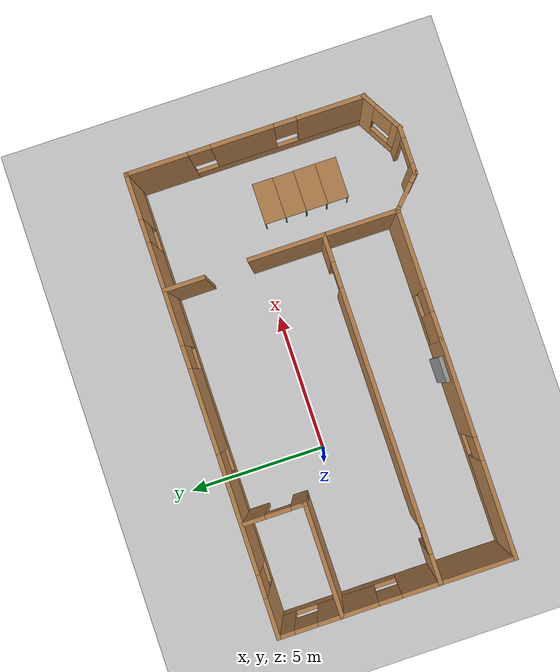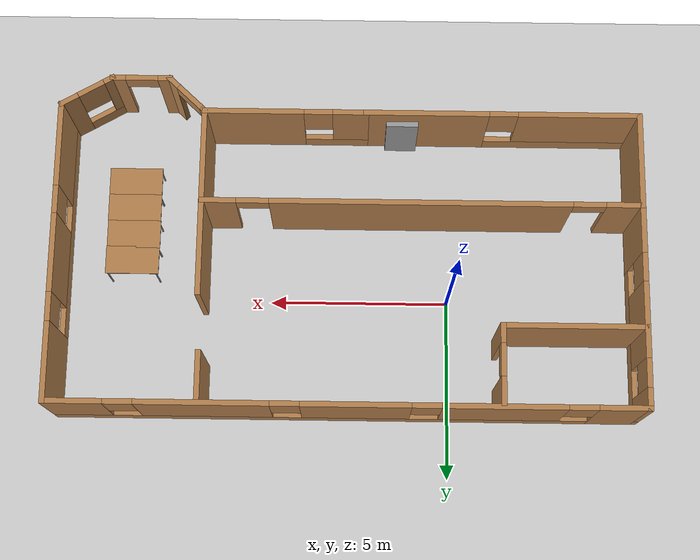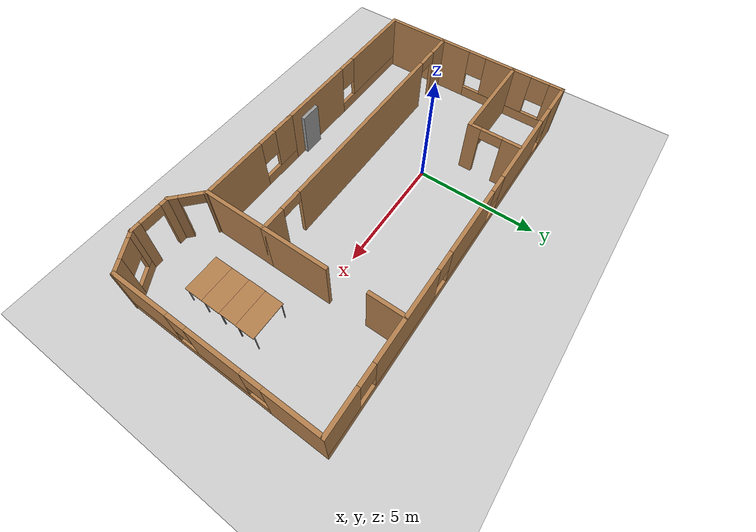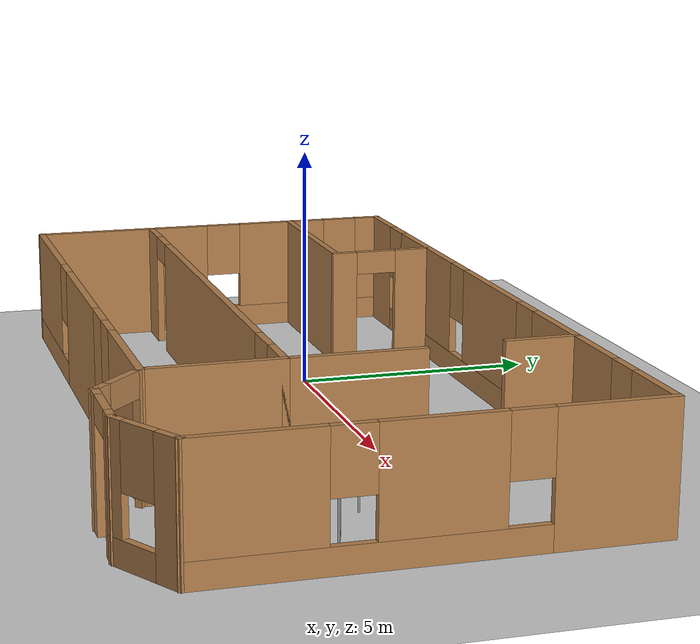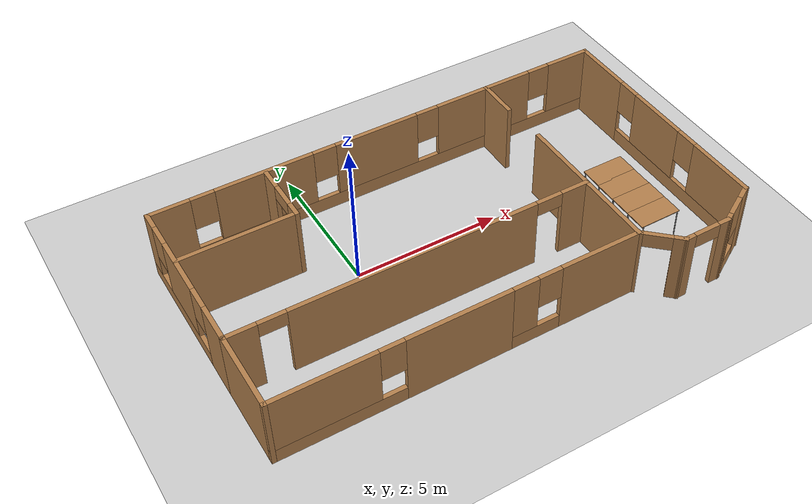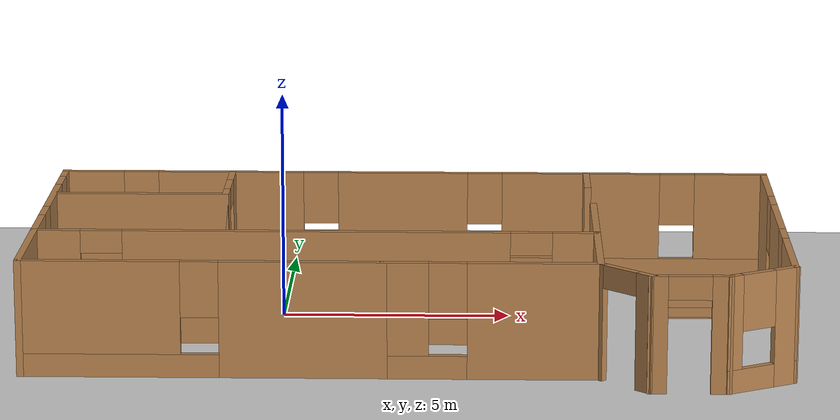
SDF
<sdf version="1.7">
 <world name="default">
  <light name="sun" type="directional">
   <pose>0 0 10 0 -0 0</pose>
   <diffuse>0.8 0.8 0.8 1</diffuse>
   <specular>0.2 0.2 0.2 1</specular>
   <attenuation>
    <range>1000</range>
    <constant>0.9</constant>
    <linear>0.01</linear>
    <quadratic>0.001</quadratic>
   </attenuation>
   <direction>-0.5 0.1 -0.9</direction>
   <spot><inner_angle>0</inner_angle><outer_angle>0</outer_angle><falloff>0</falloff></spot>
  </light>
  <model name="ground_plane">
   <static>1</static>
   <link name="link">
    <collision name="collision">
     <geometry><plane><normal>0 0 1</normal><size>100 100</size></plane></geometry>
     <surface>
      <contact><collide_bitmask>65535</collide_bitmask></contact>
      <friction><ode><mu>100</mu><mu2>50</mu2></ode></friction>
     </surface>
    </collision>
    <visual name="visual">
     <cast_shadows>0</cast_shadows>
     <geometry><plane><normal>0 0 1</normal><size>100 100</size></plane></geometry>
     <material>
      <script><uri>file://media/materials/scripts/gazebo.material</uri><name>Gazebo/Grey</name></script>
     </material>
    </visual>
   </link>
  </model>
  <gravity>0 0 -9.8</gravity>
  <magnetic_field>6e-06 2.3e-05 -4.2e-05</magnetic_field>
  <atmosphere type="adiabatic"/>
  <physics type="ode">
   <max_step_size>0.001</max_step_size>
   <real_time_factor>1</real_time_factor>
   <real_time_update_rate>1000</real_time_update_rate>
  </physics>
  <scene><ambient>0.4 0.4 0.4 1</ambient><background>0.7 0.7 0.7 1</background><shadows>1</shadows></scene>
  <audio><device>default</device></audio>
  <spherical_coordinates>
   <surface_model>EARTH_WGS84</surface_model>
   <latitude_deg>0</latitude_deg>
   <longitude_deg>0</longitude_deg>
   <elevation>0</elevation>
   <heading_deg>0</heading_deg>
  </spherical_coordinates>
  <model name="model_home_1">
   <pose>2.83373 -1.2905 0 0 -0 0</pose>
   <link name="Door_5">
    <collision name="Door_5_Collision">
     <geometry><box><size>0.9 0.17 2</size></box></geometry>
     <pose>0 0 1 0 -0 0</pose>
    </collision>
    <visual name="Door_5_Visual">
     <pose>0 0 1 0 -0 0</pose>
     <geometry><box><size>0.9 0.17 2</size></box></geometry>
     <material>
      <script><uri>file://media/materials/scripts/gazebo.material</uri><name>Gazebo/Grey</name></script>
     </material>
    </visual>
    <pose>-1.48461 -3.47349 0 0 -0 0</pose>
   </link>
   <link name="Wall_10">
    <pose>8.03627 0.415504 0 0 -0 -1.5708</pose>
    <visual name="Wall_10_Visual_0">
     <pose>-3.13323 0 1.25 0 -0 0</pose>
     <geometry><box><size>2.23353 0.15 2.5</size></box></geometry>
     <material>
      <script><uri>file://media/materials/scripts/gazebo.material</uri><name>Gazebo/Wood</name></script>
      <ambient>1 1 1 1</ambient>
     </material>
     <meta><layer>0</layer></meta>
    </visual>
    <collision name="Wall_10_Collision_0">
     <geometry><box><size>2.23353 0.15 2.5</size></box></geometry>
     <pose>-3.13323 0 1.25 0 -0 0</pose>
    </collision>
    <visual name="Wall_10_Visual_1">
     <pose>1.11677 0 0.25 0 -0 0</pose>
     <geometry><box><size>6.26647 0.15 0.5</size></box></geometry>
     <material>
      <script><uri>file://media/materials/scripts/gazebo.material</uri><name>Gazebo/Wood</name></script>
      <ambient>1 1 1 1</ambient>
     </material>
     <meta><layer>0</layer></meta>
    </visual>
    <collision name="Wall_10_Collision_1">
     <geometry><box><size>6.26647 0.15 0.5</size></box></geometry>
     <pose>1.11677 0 0.25 0 -0 0</pose>
    </collision>
    <visual name="Wall_10_Visual_2">
     <pose>-0.109904 0 1.5 0 -0 0</pose>
     <geometry><box><size>2.21312 0.15 2</size></box></geometry>
     <material>
      <script><uri>file://media/materials/scripts/gazebo.material</uri><name>Gazebo/Wood</name></script>
      <ambient>1 1 1 1</ambient>
     </material>
     <meta><layer>0</layer></meta>
    </visual>
    <collision name="Wall_10_Collision_2">
     <geometry><box><size>2.21312 0.15 2</size></box></geometry>
     <pose>-0.109904 0 1.5 0 -0 0</pose>
    </collision>
    <visual name="Wall_10_Visual_3">
     <pose>3.02333 0 1.5 0 -0 0</pose>
     <geometry><box><size>2.45334 0.15 2</size></box></geometry>
     <material>
      <script><uri>file://media/materials/scripts/gazebo.material</uri><name>Gazebo/Wood</name></script>
      <ambient>1 1 1 1</ambient>
     </material>
     <meta><layer>0</layer></meta>
    </visual>
    <collision name="Wall_10_Collision_3">
     <geometry><box><size>2.45334 0.15 2</size></box></geometry>
     <pose>3.02333 0 1.5 0 -0 0</pose>
    </collision>
    <visual name="Wall_10_Visual_4">
     <pose>-1.61647 0 1.9 0 -0 0</pose>
     <geometry><box><size>0.8 0.15 1.2</size></box></geometry>
     <material>
      <script><uri>file://media/materials/scripts/gazebo.material</uri><name>Gazebo/Wood</name></script>
      <ambient>1 1 1 1</ambient>
     </material>
     <meta><layer>0</layer></meta>
    </visual>
    <collision name="Wall_10_Collision_4">
     <geometry><box><size>0.8 0.15 1.2</size></box></geometry>
     <pose>-1.61647 0 1.9 0 -0 0</pose>
    </collision>
    <visual name="Wall_10_Visual_5">
     <pose>1.39666 0 1.9 0 -0 0</pose>
     <geometry><box><size>0.8 0.15 1.2</size></box></geometry>
     <material>
      <script><uri>file://media/materials/scripts/gazebo.material</uri><name>Gazebo/Wood</name></script>
      <ambient>1 1 1 1</ambient>
     </material>
     <meta><layer>0</layer></meta>
    </visual>
    <collision name="Wall_10_Collision_5">
     <geometry><box><size>0.8 0.15 1.2</size></box></geometry>
     <pose>1.39666 0 1.9 0 -0 0</pose>
    </collision>
   </link>
   <link name="Wall_11">
    <pose>7.34345 -4.15949 0 0 -0 -2.61799</pose>
    <visual name="Wall_11_Visual_0">
     <pose>-0.577772 0 1.25 0 -0 0</pose>
     <geometry><box><size>0.594456 0.15 2.5</size></box></geometry>
     <material>
      <script><uri>file://media/materials/scripts/gazebo.material</uri><name>Gazebo/Wood</name></script>
      <ambient>1 1 1 1</ambient>
     </material>
     <meta><layer>0</layer></meta>
    </visual>
    <collision name="Wall_11_Collision_0">
     <geometry><box><size>0.594456 0.15 2.5</size></box></geometry>
     <pose>-0.577772 0 1.25 0 -0 0</pose>
    </collision>
    <visual name="Wall_11_Visual_1">
     <pose>0.297228 0 0.25 0 -0 0</pose>
     <geometry><box><size>1.15554 0.15 0.5</size></box></geometry>
     <material>
      <script><uri>file://media/materials/scripts/gazebo.material</uri><name>Gazebo/Wood</name></script>
      <ambient>1 1 1 1</ambient>
     </material>
     <meta><layer>0</layer></meta>
    </visual>
    <collision name="Wall_11_Collision_1">
     <geometry><box><size>1.15554 0.15 0.5</size></box></geometry>
     <pose>0.297228 0 0.25 0 -0 0</pose>
    </collision>
    <visual name="Wall_11_Visual_2">
     <pose>0.697228 0 1.5 0 -0 0</pose>
     <geometry><box><size>0.355544 0.15 2</size></box></geometry>
     <material>
      <script><uri>file://media/materials/scripts/gazebo.material</uri><name>Gazebo/Wood</name></script>
      <ambient>1 1 1 1</ambient>
     </material>
     <meta><layer>0</layer></meta>
    </visual>
    <collision name="Wall_11_Collision_2">
     <geometry><box><size>0.355544 0.15 2</size></box></geometry>
     <pose>0.697228 0 1.5 0 -0 0</pose>
    </collision>
    <visual name="Wall_11_Visual_3">
     <pose>0.119456 0 1.9 0 -0 0</pose>
     <geometry><box><size>0.8 0.15 1.2</size></box></geometry>
     <material>
      <script><uri>file://media/materials/scripts/gazebo.material</uri><name>Gazebo/Wood</name></script>
      <ambient>1 1 1 1</ambient>
     </material>
     <meta><layer>0</layer></meta>
    </visual>
    <collision name="Wall_11_Collision_3">
     <geometry><box><size>0.8 0.15 1.2</size></box></geometry>
     <pose>0.119456 0 1.9 0 -0 0</pose>
    </collision>
   </link>
   <link name="Wall_12">
    <pose>5.85063 -4.5595 0 0 -0 3.14159</pose>
    <visual name="Wall_12_Visual_0">
     <pose>-0.654676 0 1.25 0 -0 0</pose>
     <geometry><box><size>0.440649 0.15 2.5</size></box></geometry>
     <material>
      <script><uri>file://media/materials/scripts/gazebo.material</uri><name>Gazebo/Wood</name></script>
      <ambient>1 1 1 1</ambient>
     </material>
     <meta><layer>0</layer></meta>
    </visual>
    <collision name="Wall_12_Collision_0">
     <geometry><box><size>0.440649 0.15 2.5</size></box></geometry>
     <pose>-0.654676 0 1.25 0 -0 0</pose>
    </collision>
    <visual name="Wall_12_Visual_1">
     <pose>0.670324 0 1.25 0 -0 0</pose>
     <geometry><box><size>0.409351 0.15 2.5</size></box></geometry>
     <material>
      <script><uri>file://media/materials/scripts/gazebo.material</uri><name>Gazebo/Wood</name></script>
      <ambient>1 1 1 1</ambient>
     </material>
     <meta><layer>0</layer></meta>
    </visual>
    <collision name="Wall_12_Collision_1">
     <geometry><box><size>0.409351 0.15 2.5</size></box></geometry>
     <pose>0.670324 0 1.25 0 -0 0</pose>
    </collision>
    <visual name="Wall_12_Visual_2">
     <pose>0.015649 0 2.25 0 -0 0</pose>
     <geometry><box><size>0.9 0.15 0.5</size></box></geometry>
     <material>
      <script><uri>file://media/materials/scripts/gazebo.material</uri><name>Gazebo/Wood</name></script>
      <ambient>1 1 1 1</ambient>
     </material>
     <meta><layer>0</layer></meta>
    </visual>
    <collision name="Wall_12_Collision_2">
     <geometry><box><size>0.9 0.15 0.5</size></box></geometry>
     <pose>0.015649 0 2.25 0 -0 0</pose>
    </collision>
   </link>
   <link name="Wall_13">
    <pose>4.54345 -4.0845 0 0 -0 2.38895</pose>
    <visual name="Wall_13_Visual_0">
     <pose>-0.552089 0 1.25 0 -0 0</pose>
     <geometry><box><size>0.435578 0.15 2.5</size></box></geometry>
     <material>
      <script><uri>file://media/materials/scripts/gazebo.material</uri><name>Gazebo/Wood</name></script>
      <ambient>1 1 1 1</ambient>
     </material>
     <meta><layer>0</layer></meta>
    </visual>
    <collision name="Wall_13_Collision_0">
     <geometry><box><size>0.435578 0.15 2.5</size></box></geometry>
     <pose>-0.552089 0 1.25 0 -0 0</pose>
    </collision>
    <visual name="Wall_13_Visual_1">
     <pose>0.667789 0 1.25 0 -0 0</pose>
     <geometry><box><size>0.204179 0.15 2.5</size></box></geometry>
     <material>
      <script><uri>file://media/materials/scripts/gazebo.material</uri><name>Gazebo/Wood</name></script>
      <ambient>1 1 1 1</ambient>
     </material>
     <meta><layer>0</layer></meta>
    </visual>
    <collision name="Wall_13_Collision_1">
     <geometry><box><size>0.204179 0.15 2.5</size></box></geometry>
     <pose>0.667789 0 1.25 0 -0 0</pose>
    </collision>
    <visual name="Wall_13_Visual_2">
     <pose>0.1157 0 2.25 0 -0 0</pose>
     <geometry><box><size>0.9 0.15 0.5</size></box></geometry>
     <material>
      <script><uri>file://media/materials/scripts/gazebo.material</uri><name>Gazebo/Wood</name></script>
      <ambient>1 1 1 1</ambient>
     </material>
     <meta><layer>0</layer></meta>
    </visual>
    <collision name="Wall_13_Collision_2">
     <geometry><box><size>0.9 0.15 0.5</size></box></geometry>
     <pose>0.1157 0 2.25 0 -0 0</pose>
    </collision>
   </link>
   <link name="Wall_15">
    <collision name="Wall_15_Collision">
     <geometry><box><size>2.75 0.15 2.5</size></box></geometry>
     <pose>0 0 1.25 0 -0 0</pose>
    </collision>
    <visual name="Wall_15_Visual">
     <pose>0 0 1.25 0 -0 0</pose>
     <geometry><box><size>2.75 0.15 2.5</size></box></geometry>
     <material>
      <script><uri>file://media/materials/scripts/gazebo.material</uri><name>Gazebo/Wood</name></script>
      <ambient>1 1 1 1</ambient>
     </material>
     <meta><layer>0</layer></meta>
    </visual>
    <pose>4.03627 0.290504 0 0 -0 1.5708</pose>
   </link>
   <link name="Wall_17">
    <collision name="Wall_17_Collision">
     <geometry><box><size>1.5 0.15 2.5</size></box></geometry>
     <pose>0 0 1.25 0 -0 0</pose>
    </collision>
    <visual name="Wall_17_Visual">
     <pose>0 0 1.25 0 -0 0</pose>
     <geometry><box><size>1.5 0.15 2.5</size></box></geometry>
     <material>
      <script><uri>file://media/materials/scripts/gazebo.material</uri><name>Gazebo/Wood</name></script>
      <ambient>1 1 1 1</ambient>
     </material>
     <meta><layer>0</layer></meta>
    </visual>
    <pose>3.95539 3.91501 0 0 -0 -1.5708</pose>
   </link>
   <link name="Wall_19">
    <collision name="Wall_19_Collision">
     <geometry><box><size>4 0.15 2.5</size></box></geometry>
     <pose>0 0 1.25 0 -0 0</pose>
    </collision>
    <visual name="Wall_19_Visual">
     <pose>0 0 1.25 0 -0 0</pose>
     <geometry><box><size>4 0.15 2.5</size></box></geometry>
     <material>
      <script><uri>file://media/materials/scripts/gazebo.material</uri><name>Gazebo/Wood</name></script>
      <ambient>1 1 1 1</ambient>
     </material>
     <meta><layer>0</layer></meta>
    </visual>
    <pose>-6.1244 2.3926 0 0 -0 0</pose>
   </link>
   <link name="Wall_2">
    <pose>-4.26373 -3.6095 0 0 -0 3.14159</pose>
    <visual name="Wall_2_Visual_0">
     <pose>-2.12348 0 1.25 0 -0 0</pose>
     <geometry><box><size>3.50304 0.15 2.5</size></box></geometry>
     <material>
      <script><uri>file://media/materials/scripts/gazebo.material</uri><name>Gazebo/Wood</name></script>
      <ambient>1 1 1 1</ambient>
     </material>
     <meta><layer>0</layer></meta>
    </visual>
    <collision name="Wall_2_Collision_0">
     <geometry><box><size>3.50304 0.15 2.5</size></box></geometry>
     <pose>-2.12348 0 1.25 0 -0 0</pose>
    </collision>
    <visual name="Wall_2_Visual_1">
     <pose>1.75152 0 0.25 0 -0 0</pose>
     <geometry><box><size>4.24696 0.15 0.5</size></box></geometry>
     <material>
      <script><uri>file://media/materials/scripts/gazebo.material</uri><name>Gazebo/Wood</name></script>
      <ambient>1 1 1 1</ambient>
     </material>
     <meta><layer>0</layer></meta>
    </visual>
    <collision name="Wall_2_Collision_1">
     <geometry><box><size>4.24696 0.15 0.5</size></box></geometry>
     <pose>1.75152 0 0.25 0 -0 0</pose>
    </collision>
    <visual name="Wall_2_Visual_2">
     <pose>2.15152 0 1.5 0 -0 0</pose>
     <geometry><box><size>3.44696 0.15 2</size></box></geometry>
     <material>
      <script><uri>file://media/materials/scripts/gazebo.material</uri><name>Gazebo/Wood</name></script>
      <ambient>1 1 1 1</ambient>
     </material>
     <meta><layer>0</layer></meta>
    </visual>
    <collision name="Wall_2_Collision_2">
     <geometry><box><size>3.44696 0.15 2</size></box></geometry>
     <pose>2.15152 0 1.5 0 -0 0</pose>
    </collision>
    <visual name="Wall_2_Visual_3">
     <pose>0.028036 0 1.9 0 -0 0</pose>
     <geometry><box><size>0.8 0.15 1.2</size></box></geometry>
     <material>
      <script><uri>file://media/materials/scripts/gazebo.material</uri><name>Gazebo/Wood</name></script>
      <ambient>1 1 1 1</ambient>
     </material>
     <meta><layer>0</layer></meta>
    </visual>
    <collision name="Wall_2_Collision_3">
     <geometry><box><size>0.8 0.15 1.2</size></box></geometry>
     <pose>0.028036 0 1.9 0 -0 0</pose>
    </collision>
   </link>
   <link name="Wall_20">
    <pose>-4.1994 3.4426 0 0 -0 1.5708</pose>
    <visual name="Wall_20_Visual_0">
     <pose>-0.847647 0 1.25 0 -0 0</pose>
     <geometry><box><size>0.554706 0.15 2.5</size></box></geometry>
     <material>
      <script><uri>file://media/materials/scripts/gazebo.material</uri><name>Gazebo/Wood</name></script>
      <ambient>1 1 1 1</ambient>
     </material>
     <meta><layer>0</layer></meta>
    </visual>
    <collision name="Wall_20_Collision_0">
     <geometry><box><size>0.554706 0.15 2.5</size></box></geometry>
     <pose>-0.847647 0 1.25 0 -0 0</pose>
    </collision>
    <visual name="Wall_20_Visual_1">
     <pose>0.727353 0 1.25 0 -0 0</pose>
     <geometry><box><size>0.795294 0.15 2.5</size></box></geometry>
     <material>
      <script><uri>file://media/materials/scripts/gazebo.material</uri><name>Gazebo/Wood</name></script>
      <ambient>1 1 1 1</ambient>
     </material>
     <meta><layer>0</layer></meta>
    </visual>
    <collision name="Wall_20_Collision_1">
     <geometry><box><size>0.795294 0.15 2.5</size></box></geometry>
     <pose>0.727353 0 1.25 0 -0 0</pose>
    </collision>
    <visual name="Wall_20_Visual_2">
     <pose>-0.120294 0 2.25 0 -0 0</pose>
     <geometry><box><size>0.9 0.15 0.5</size></box></geometry>
     <material>
      <script><uri>file://media/materials/scripts/gazebo.material</uri><name>Gazebo/Wood</name></script>
      <ambient>1 1 1 1</ambient>
     </material>
     <meta><layer>0</layer></meta>
    </visual>
    <collision name="Wall_20_Collision_2">
     <geometry><box><size>0.9 0.15 0.5</size></box></geometry>
     <pose>-0.120294 0 2.25 0 -0 0</pose>
    </collision>
   </link>
   <link name="Wall_3">
    <collision name="Wall_3_Collision">
     <geometry><box><size>2.75 0.15 2.5</size></box></geometry>
     <pose>0 0 1.25 0 -0 0</pose>
    </collision>
    <visual name="Wall_3_Visual">
     <pose>0 0 1.25 0 -0 0</pose>
     <geometry><box><size>2.75 0.15 2.5</size></box></geometry>
     <material>
      <script><uri>file://media/materials/scripts/gazebo.material</uri><name>Gazebo/Wood</name></script>
      <ambient>1 1 1 1</ambient>
     </material>
     <meta><layer>0</layer></meta>
    </visual>
    <pose>-8.06373 -2.3095 0 0 -0 1.5708</pose>
   </link>
   <link name="Wall_4">
    <pose>-2.01373 -1.0095 0 0 -0 0</pose>
    <visual name="Wall_4_Visual_0">
     <pose>-5.58734 0 1.25 0 -0 0</pose>
     <geometry><box><size>1.07532 0.15 2.5</size></box></geometry>
     <material>
      <script><uri>file://media/materials/scripts/gazebo.material</uri><name>Gazebo/Wood</name></script>
      <ambient>1 1 1 1</ambient>
     </material>
     <meta><layer>0</layer></meta>
    </visual>
    <collision name="Wall_4_Collision_0">
     <geometry><box><size>1.07532 0.15 2.5</size></box></geometry>
     <pose>-5.58734 0 1.25 0 -0 0</pose>
    </collision>
    <visual name="Wall_4_Visual_1">
     <pose>0.023779 0 1.25 0 -0 0</pose>
     <geometry><box><size>8.34692 0.15 2.5</size></box></geometry>
     <material>
      <script><uri>file://media/materials/scripts/gazebo.material</uri><name>Gazebo/Wood</name></script>
      <ambient>1 1 1 1</ambient>
     </material>
     <meta><layer>0</layer></meta>
    </visual>
    <collision name="Wall_4_Collision_1">
     <geometry><box><size>8.34692 0.15 2.5</size></box></geometry>
     <pose>0.023779 0 1.25 0 -0 0</pose>
    </collision>
    <visual name="Wall_4_Visual_2">
     <pose>5.61112 0 1.25 0 -0 0</pose>
     <geometry><box><size>1.02776 0.15 2.5</size></box></geometry>
     <material>
      <script><uri>file://media/materials/scripts/gazebo.material</uri><name>Gazebo/Wood</name></script>
      <ambient>1 1 1 1</ambient>
     </material>
     <meta><layer>0</layer></meta>
    </visual>
    <collision name="Wall_4_Collision_2">
     <geometry><box><size>1.02776 0.15 2.5</size></box></geometry>
     <pose>5.61112 0 1.25 0 -0 0</pose>
    </collision>
    <visual name="Wall_4_Visual_3">
     <pose>-4.59968 0 2.25 0 -0 0</pose>
     <geometry><box><size>0.9 0.15 0.5</size></box></geometry>
     <material>
      <script><uri>file://media/materials/scripts/gazebo.material</uri><name>Gazebo/Wood</name></script>
      <ambient>1 1 1 1</ambient>
     </material>
     <meta><layer>0</layer></meta>
    </visual>
    <collision name="Wall_4_Collision_3">
     <geometry><box><size>0.9 0.15 0.5</size></box></geometry>
     <pose>-4.59968 0 2.25 0 -0 0</pose>
    </collision>
    <visual name="Wall_4_Visual_4">
     <pose>4.64724 0 2.25 0 -0 0</pose>
     <geometry><box><size>0.9 0.15 0.5</size></box></geometry>
     <material>
      <script><uri>file://media/materials/scripts/gazebo.material</uri><name>Gazebo/Wood</name></script>
      <ambient>1 1 1 1</ambient>
     </material>
     <meta><layer>0</layer></meta>
    </visual>
    <collision name="Wall_4_Collision_4">
     <geometry><box><size>0.9 0.15 0.5</size></box></geometry>
     <pose>4.64724 0 2.25 0 -0 0</pose>
    </collision>
   </link>
   <link name="Wall_5">
    <collision name="Wall_5_Collision">
     <geometry><box><size>2.75 0.15 2.5</size></box></geometry>
     <pose>0 0 1.25 0 -0 0</pose>
    </collision>
    <visual name="Wall_5_Visual">
     <pose>0 0 1.25 0 -0 0</pose>
     <geometry><box><size>2.75 0.15 2.5</size></box></geometry>
     <material>
      <script><uri>file://media/materials/scripts/gazebo.material</uri><name>Gazebo/Wood</name></script>
      <ambient>1 1 1 1</ambient>
     </material>
     <meta><layer>0</layer></meta>
    </visual>
    <pose>4.03627 -2.3095 0 0 -0 -1.5708</pose>
   </link>
   <link name="Wall_6">
    <pose>1.78627 -3.6095 0 0 -0 3.14159</pose>
    <visual name="Wall_6_Visual_0">
     <pose>-0.907639 0 1.25 0 -0 0</pose>
     <geometry><box><size>2.83472 0.15 2.5</size></box></geometry>
     <material>
      <script><uri>file://media/materials/scripts/gazebo.material</uri><name>Gazebo/Wood</name></script>
      <ambient>1 1 1 1</ambient>
     </material>
     <meta><layer>0</layer></meta>
    </visual>
    <collision name="Wall_6_Collision_0">
     <geometry><box><size>2.83472 0.15 2.5</size></box></geometry>
     <pose>-0.907639 0 1.25 0 -0 0</pose>
    </collision>
    <visual name="Wall_6_Visual_1">
     <pose>1.41736 0 0.25 0 -0 0</pose>
     <geometry><box><size>1.81528 0.15 0.5</size></box></geometry>
     <material>
      <script><uri>file://media/materials/scripts/gazebo.material</uri><name>Gazebo/Wood</name></script>
      <ambient>1 1 1 1</ambient>
     </material>
     <meta><layer>0</layer></meta>
    </visual>
    <collision name="Wall_6_Collision_1">
     <geometry><box><size>1.81528 0.15 0.5</size></box></geometry>
     <pose>1.41736 0 0.25 0 -0 0</pose>
    </collision>
    <visual name="Wall_6_Visual_2">
     <pose>1.81736 0 1.5 0 -0 0</pose>
     <geometry><box><size>1.01528 0.15 2</size></box></geometry>
     <material>
      <script><uri>file://media/materials/scripts/gazebo.material</uri><name>Gazebo/Wood</name></script>
      <ambient>1 1 1 1</ambient>
     </material>
     <meta><layer>0</layer></meta>
    </visual>
    <collision name="Wall_6_Collision_2">
     <geometry><box><size>1.01528 0.15 2</size></box></geometry>
     <pose>1.81736 0 1.5 0 -0 0</pose>
    </collision>
    <visual name="Wall_6_Visual_3">
     <pose>0.909722 0 1.9 0 -0 0</pose>
     <geometry><box><size>0.8 0.15 1.2</size></box></geometry>
     <material>
      <script><uri>file://media/materials/scripts/gazebo.material</uri><name>Gazebo/Wood</name></script>
      <ambient>1 1 1 1</ambient>
     </material>
     <meta><layer>0</layer></meta>
    </visual>
    <collision name="Wall_6_Collision_3">
     <geometry><box><size>0.8 0.15 1.2</size></box></geometry>
     <pose>0.909722 0 1.9 0 -0 0</pose>
    </collision>
   </link>
   <link name="Wall_8">
    <pose>-8.06373 1.7905 0 0 -0 1.5708</pose>
    <visual name="Wall_8_Visual_0">
     <pose>-2.17195 0 1.25 0 -0 0</pose>
     <geometry><box><size>1.4061 0.15 2.5</size></box></geometry>
     <material>
      <script><uri>file://media/materials/scripts/gazebo.material</uri><name>Gazebo/Wood</name></script>
      <ambient>1 1 1 1</ambient>
     </material>
     <meta><layer>0</layer></meta>
    </visual>
    <collision name="Wall_8_Collision_0">
     <geometry><box><size>1.4061 0.15 2.5</size></box></geometry>
     <pose>-2.17195 0 1.25 0 -0 0</pose>
    </collision>
    <visual name="Wall_8_Visual_1">
     <pose>0.703052 0 0.25 0 -0 0</pose>
     <geometry><box><size>4.3439 0.15 0.5</size></box></geometry>
     <material>
      <script><uri>file://media/materials/scripts/gazebo.material</uri><name>Gazebo/Wood</name></script>
      <ambient>1 1 1 1</ambient>
     </material>
     <meta><layer>0</layer></meta>
    </visual>
    <collision name="Wall_8_Collision_1">
     <geometry><box><size>4.3439 0.15 0.5</size></box></geometry>
     <pose>0.703052 0 0.25 0 -0 0</pose>
    </collision>
    <visual name="Wall_8_Visual_2">
     <pose>0.383539 0 1.5 0 -0 0</pose>
     <geometry><box><size>2.10487 0.15 2</size></box></geometry>
     <material>
      <script><uri>file://media/materials/scripts/gazebo.material</uri><name>Gazebo/Wood</name></script>
      <ambient>1 1 1 1</ambient>
     </material>
     <meta><layer>0</layer></meta>
    </visual>
    <collision name="Wall_8_Collision_2">
     <geometry><box><size>2.10487 0.15 2</size></box></geometry>
     <pose>0.383539 0 1.5 0 -0 0</pose>
    </collision>
    <visual name="Wall_8_Visual_3">
     <pose>2.55549 0 1.5 0 -0 0</pose>
     <geometry><box><size>0.639025 0.15 2</size></box></geometry>
     <material>
      <script><uri>file://media/materials/scripts/gazebo.material</uri><name>Gazebo/Wood</name></script>
      <ambient>1 1 1 1</ambient>
     </material>
     <meta><layer>0</layer></meta>
    </visual>
    <collision name="Wall_8_Collision_3">
     <geometry><box><size>0.639025 0.15 2</size></box></geometry>
     <pose>2.55549 0 1.5 0 -0 0</pose>
    </collision>
    <visual name="Wall_8_Visual_4">
     <pose>-1.0689 0 1.9 0 -0 0</pose>
     <geometry><box><size>0.8 0.15 1.2</size></box></geometry>
     <material>
      <script><uri>file://media/materials/scripts/gazebo.material</uri><name>Gazebo/Wood</name></script>
      <ambient>1 1 1 1</ambient>
     </material>
     <meta><layer>0</layer></meta>
    </visual>
    <collision name="Wall_8_Collision_4">
     <geometry><box><size>0.8 0.15 1.2</size></box></geometry>
     <pose>-1.0689 0 1.9 0 -0 0</pose>
    </collision>
    <visual name="Wall_8_Visual_5">
     <pose>1.83597 0 1.9 0 -0 0</pose>
     <geometry><box><size>0.8 0.15 1.2</size></box></geometry>
     <material>
      <script><uri>file://media/materials/scripts/gazebo.material</uri><name>Gazebo/Wood</name></script>
      <ambient>1 1 1 1</ambient>
     </material>
     <meta><layer>0</layer></meta>
    </visual>
    <collision name="Wall_8_Collision_5">
     <geometry><box><size>0.8 0.15 1.2</size></box></geometry>
     <pose>1.83597 0 1.9 0 -0 0</pose>
    </collision>
   </link>
   <link name="Wall_9">
    <pose>-0.013726 4.5905 0 0 -0 0</pose>
    <visual name="Wall_9_Visual_0">
     <pose>-7.41025 0 1.25 0 -0 0</pose>
     <geometry><box><size>1.42949 0.15 2.5</size></box></geometry>
     <material>
      <script><uri>file://media/materials/scripts/gazebo.material</uri><name>Gazebo/Wood</name></script>
      <ambient>1 1 1 1</ambient>
     </material>
     <meta><layer>0</layer></meta>
    </visual>
    <collision name="Wall_9_Collision_0">
     <geometry><box><size>1.42949 0.15 2.5</size></box></geometry>
     <pose>-7.41025 0 1.25 0 -0 0</pose>
    </collision>
    <visual name="Wall_9_Visual_1">
     <pose>0.714747 0 0.25 0 -0 0</pose>
     <geometry><box><size>14.8205 0.15 0.5</size></box></geometry>
     <material>
      <script><uri>file://media/materials/scripts/gazebo.material</uri><name>Gazebo/Wood</name></script>
      <ambient>1 1 1 1</ambient>
     </material>
     <meta><layer>0</layer></meta>
    </visual>
    <collision name="Wall_9_Collision_1">
     <geometry><box><size>14.8205 0.15 0.5</size></box></geometry>
     <pose>0.714747 0 0.25 0 -0 0</pose>
    </collision>
    <visual name="Wall_9_Visual_2">
     <pose>-4.21953 0 1.5 0 -0 0</pose>
     <geometry><box><size>3.35195 0.15 2</size></box></geometry>
     <material>
      <script><uri>file://media/materials/scripts/gazebo.material</uri><name>Gazebo/Wood</name></script>
      <ambient>1 1 1 1</ambient>
     </material>
     <meta><layer>0</layer></meta>
    </visual>
    <collision name="Wall_9_Collision_2">
     <geometry><box><size>3.35195 0.15 2</size></box></geometry>
     <pose>-4.21953 0 1.5 0 -0 0</pose>
    </collision>
    <visual name="Wall_9_Visual_3">
     <pose>-0.25288 0 1.5 0 -0 0</pose>
     <geometry><box><size>2.98135 0.15 2</size></box></geometry>
     <material>
      <script><uri>file://media/materials/scripts/gazebo.material</uri><name>Gazebo/Wood</name></script>
      <ambient>1 1 1 1</ambient>
     </material>
     <meta><layer>0</layer></meta>
    </visual>
    <collision name="Wall_9_Collision_3">
     <geometry><box><size>2.98135 0.15 2</size></box></geometry>
     <pose>-0.25288 0 1.5 0 -0 0</pose>
    </collision>
    <visual name="Wall_9_Visual_4">
     <pose>3.85029 0 1.5 0 -0 0</pose>
     <geometry><box><size>3.62499 0.15 2</size></box></geometry>
     <material>
      <script><uri>file://media/materials/scripts/gazebo.material</uri><name>Gazebo/Wood</name></script>
      <ambient>1 1 1 1</ambient>
     </material>
     <meta><layer>0</layer></meta>
    </visual>
    <collision name="Wall_9_Collision_4">
     <geometry><box><size>3.62499 0.15 2</size></box></geometry>
     <pose>3.85029 0 1.5 0 -0 0</pose>
    </collision>
    <visual name="Wall_9_Visual_5">
     <pose>7.29389 0 1.5 0 -0 0</pose>
     <geometry><box><size>1.66222 0.15 2</size></box></geometry>
     <material>
      <script><uri>file://media/materials/scripts/gazebo.material</uri><name>Gazebo/Wood</name></script>
      <ambient>1 1 1 1</ambient>
     </material>
     <meta><layer>0</layer></meta>
    </visual>
    <collision name="Wall_9_Collision_5">
     <geometry><box><size>1.66222 0.15 2</size></box></geometry>
     <pose>7.29389 0 1.5 0 -0 0</pose>
    </collision>
    <visual name="Wall_9_Visual_6">
     <pose>-6.29551 0 1.9 0 -0 0</pose>
     <geometry><box><size>0.8 0.15 1.2</size></box></geometry>
     <material>
      <script><uri>file://media/materials/scripts/gazebo.material</uri><name>Gazebo/Wood</name></script>
      <ambient>1 1 1 1</ambient>
     </material>
     <meta><layer>0</layer></meta>
    </visual>
    <collision name="Wall_9_Collision_6">
     <geometry><box><size>0.8 0.15 1.2</size></box></geometry>
     <pose>-6.29551 0 1.9 0 -0 0</pose>
    </collision>
    <visual name="Wall_9_Visual_7">
     <pose>-2.14356 0 1.9 0 -0 0</pose>
     <geometry><box><size>0.8 0.15 1.2</size></box></geometry>
     <material>
      <script><uri>file://media/materials/scripts/gazebo.material</uri><name>Gazebo/Wood</name></script>
      <ambient>1 1 1 1</ambient>
     </material>
     <meta><layer>0</layer></meta>
    </visual>
    <collision name="Wall_9_Collision_7">
     <geometry><box><size>0.8 0.15 1.2</size></box></geometry>
     <pose>-2.14356 0 1.9 0 -0 0</pose>
    </collision>
    <visual name="Wall_9_Visual_8">
     <pose>1.6378 0 1.9 0 -0 0</pose>
     <geometry><box><size>0.8 0.15 1.2</size></box></geometry>
     <material>
      <script><uri>file://media/materials/scripts/gazebo.material</uri><name>Gazebo/Wood</name></script>
      <ambient>1 1 1 1</ambient>
     </material>
     <meta><layer>0</layer></meta>
    </visual>
    <collision name="Wall_9_Collision_8">
     <geometry><box><size>0.8 0.15 1.2</size></box></geometry>
     <pose>1.6378 0 1.9 0 -0 0</pose>
    </collision>
    <visual name="Wall_9_Visual_9">
     <pose>6.06278 0 1.9 0 -0 0</pose>
     <geometry><box><size>0.8 0.15 1.2</size></box></geometry>
     <material>
      <script><uri>file://media/materials/scripts/gazebo.material</uri><name>Gazebo/Wood</name></script>
      <ambient>1 1 1 1</ambient>
     </material>
     <meta><layer>0</layer></meta>
    </visual>
    <collision name="Wall_9_Collision_9">
     <geometry><box><size>0.8 0.15 1.2</size></box></geometry>
     <pose>6.06278 0 1.9 0 -0 0</pose>
    </collision>
   </link>
   <static>1</static>
  </model>
  <model name="table">
   <static>1</static>
   <link name="link">
    <collision name="surface">
     <pose>0 0 1 0 -0 0</pose>
     <geometry><box><size>1.5 0.8 0.03</size></box></geometry>
     <surface><friction><ode><mu>0.6</mu><mu2>0.6</mu2></ode></friction></surface>
    </collision>
    <visual name="visual1">
     <pose>0 0 1 0 -0 0</pose>
     <geometry><box><size>1.5 0.8 0.03</size></box></geometry>
     <material>
      <script><uri>file://media/materials/scripts/gazebo.material</uri><name>Gazebo/Wood</name></script>
     </material>
    </visual>
    <collision name="front_left_leg">
     <pose>0.68 0.38 0.5 0 -0 0</pose>
     <geometry><cylinder><radius>0.02</radius><length>1</length></cylinder></geometry>
    </collision>
    <visual name="front_left_leg">
     <pose>0.68 0.38 0.5 0 -0 0</pose>
     <geometry><cylinder><radius>0.02</radius><length>1</length></cylinder></geometry>
     <material>
      <script><uri>file://media/materials/scripts/gazebo.material</uri><name>Gazebo/Grey</name></script>
     </material>
    </visual>
    <collision name="front_right_leg">
     <pose>0.68 -0.38 0.5 0 -0 0</pose>
     <geometry><cylinder><radius>0.02</radius><length>1</length></cylinder></geometry>
    </collision>
    <visual name="front_right_leg">
     <pose>0.68 -0.38 0.5 0 -0 0</pose>
     <geometry><cylinder><radius>0.02</radius><length>1</length></cylinder></geometry>
     <material>
      <script><uri>file://media/materials/scripts/gazebo.material</uri><name>Gazebo/Grey</name></script>
     </material>
    </visual>
    <collision name="back_right_leg">
     <pose>-0.68 -0.38 0.5 0 -0 0</pose>
     <geometry><cylinder><radius>0.02</radius><length>1</length></cylinder></geometry>
    </collision>
    <visual name="back_right_leg">
     <pose>-0.68 -0.38 0.5 0 -0 0</pose>
     <geometry><cylinder><radius>0.02</radius><length>1</length></cylinder></geometry>
     <material>
      <script><uri>file://media/materials/scripts/gazebo.material</uri><name>Gazebo/Grey</name></script>
     </material>
    </visual>
    <collision name="back_left_leg">
     <pose>-0.68 0.38 0.5 0 -0 0</pose>
     <geometry><cylinder><radius>0.02</radius><length>1</length></cylinder></geometry>
    </collision>
    <visual name="back_left_leg">
     <pose>-0.68 0.38 0.5 0 -0 0</pose>
     <geometry><cylinder><radius>0.02</radius><length>1</length></cylinder></geometry>
     <material>
      <script><uri>file://media/materials/scripts/gazebo.material</uri><name>Gazebo/Grey</name></script>
     </material>
    </visual>
   </link>
   <pose>8.91024 -3.27717 0 0 -0 0</pose>
  </model>
  <model name="table_0">
   <static>1</static>
   <link name="link">
    <collision name="surface">
     <pose>0 0 1 0 -0 0</pose>
     <geometry><box><size>1.5 0.8 0.03</size></box></geometry>
     <surface><friction><ode><mu>0.6</mu><mu2>0.6</mu2></ode></friction></surface>
    </collision>
    <visual name="visual1">
     <pose>0 0 1 0 -0 0</pose>
     <geometry><box><size>1.5 0.8 0.03</size></box></geometry>
     <material>
      <script><uri>file://media/materials/scripts/gazebo.material</uri><name>Gazebo/Wood</name></script>
     </material>
    </visual>
    <collision name="front_left_leg">
     <pose>0.68 0.38 0.5 0 -0 0</pose>
     <geometry><cylinder><radius>0.02</radius><length>1</length></cylinder></geometry>
    </collision>
    <visual name="front_left_leg">
     <pose>0.68 0.38 0.5 0 -0 0</pose>
     <geometry><cylinder><radius>0.02</radius><length>1</length></cylinder></geometry>
     <material>
      <script><uri>file://media/materials/scripts/gazebo.material</uri><name>Gazebo/Grey</name></script>
     </material>
    </visual>
    <collision name="front_right_leg">
     <pose>0.68 -0.38 0.5 0 -0 0</pose>
     <geometry><cylinder><radius>0.02</radius><length>1</length></cylinder></geometry>
    </collision>
    <visual name="front_right_leg">
     <pose>0.68 -0.38 0.5 0 -0 0</pose>
     <geometry><cylinder><radius>0.02</radius><length>1</length></cylinder></geometry>
     <material>
      <script><uri>file://media/materials/scripts/gazebo.material</uri><name>Gazebo/Grey</name></script>
     </material>
    </visual>
    <collision name="back_right_leg">
     <pose>-0.68 -0.38 0.5 0 -0 0</pose>
     <geometry><cylinder><radius>0.02</radius><length>1</length></cylinder></geometry>
    </collision>
    <visual name="back_right_leg">
     <pose>-0.68 -0.38 0.5 0 -0 0</pose>
     <geometry><cylinder><radius>0.02</radius><length>1</length></cylinder></geometry>
     <material>
      <script><uri>file://media/materials/scripts/gazebo.material</uri><name>Gazebo/Grey</name></script>
     </material>
    </visual>
    <collision name="back_left_leg">
     <pose>-0.68 0.38 0.5 0 -0 0</pose>
     <geometry><cylinder><radius>0.02</radius><length>1</length></cylinder></geometry>
    </collision>
    <visual name="back_left_leg">
     <pose>-0.68 0.38 0.5 0 -0 0</pose>
     <geometry><cylinder><radius>0.02</radius><length>1</length></cylinder></geometry>
     <material>
      <script><uri>file://media/materials/scripts/gazebo.material</uri><name>Gazebo/Grey</name></script>
     </material>
    </visual>
   </link>
   <pose>8.90988 -2.50094 0 0 -0 0</pose>
  </model>
  <model name="table_1">
   <static>1</static>
   <link name="link">
    <collision name="surface">
     <pose>0 0 1 0 -0 0</pose>
     <geometry><box><size>1.5 0.8 0.03</size></box></geometry>
     <surface><friction><ode><mu>0.6</mu><mu2>0.6</mu2></ode></friction></surface>
    </collision>
    <visual name="visual1">
     <pose>0 0 1 0 -0 0</pose>
     <geometry><box><size>1.5 0.8 0.03</size></box></geometry>
     <material>
      <script><uri>file://media/materials/scripts/gazebo.material</uri><name>Gazebo/Wood</name></script>
     </material>
    </visual>
    <collision name="front_left_leg">
     <pose>0.68 0.38 0.5 0 -0 0</pose>
     <geometry><cylinder><radius>0.02</radius><length>1</length></cylinder></geometry>
    </collision>
    <visual name="front_left_leg">
     <pose>0.68 0.38 0.5 0 -0 0</pose>
     <geometry><cylinder><radius>0.02</radius><length>1</length></cylinder></geometry>
     <material>
      <script><uri>file://media/materials/scripts/gazebo.material</uri><name>Gazebo/Grey</name></script>
     </material>
    </visual>
    <collision name="front_right_leg">
     <pose>0.68 -0.38 0.5 0 -0 0</pose>
     <geometry><cylinder><radius>0.02</radius><length>1</length></cylinder></geometry>
    </collision>
    <visual name="front_right_leg">
     <pose>0.68 -0.38 0.5 0 -0 0</pose>
     <geometry><cylinder><radius>0.02</radius><length>1</length></cylinder></geometry>
     <material>
      <script><uri>file://media/materials/scripts/gazebo.material</uri><name>Gazebo/Grey</name></script>
     </material>
    </visual>
    <collision name="back_right_leg">
     <pose>-0.68 -0.38 0.5 0 -0 0</pose>
     <geometry><cylinder><radius>0.02</radius><length>1</length></cylinder></geometry>
    </collision>
    <visual name="back_right_leg">
     <pose>-0.68 -0.38 0.5 0 -0 0</pose>
     <geometry><cylinder><radius>0.02</radius><length>1</length></cylinder></geometry>
     <material>
      <script><uri>file://media/materials/scripts/gazebo.material</uri><name>Gazebo/Grey</name></script>
     </material>
    </visual>
    <collision name="back_left_leg">
     <pose>-0.68 0.38 0.5 0 -0 0</pose>
     <geometry><cylinder><radius>0.02</radius><length>1</length></cylinder></geometry>
    </collision>
    <visual name="back_left_leg">
     <pose>-0.68 0.38 0.5 0 -0 0</pose>
     <geometry><cylinder><radius>0.02</radius><length>1</length></cylinder></geometry>
     <material>
      <script><uri>file://media/materials/scripts/gazebo.material</uri><name>Gazebo/Grey</name></script>
     </material>
    </visual>
   </link>
   <pose>8.90152 -1.72555 0 0 -0 0</pose>
  </model>
  <model name="table_2">
   <static>1</static>
   <link name="link">
    <collision name="surface">
     <pose>0 0 1 0 -0 0</pose>
     <geometry><box><size>1.5 0.8 0.03</size></box></geometry>
     <surface><friction><ode><mu>0.6</mu><mu2>0.6</mu2></ode></friction></surface>
    </collision>
    <visual name="visual1">
     <pose>0 0 1 0 -0 0</pose>
     <geometry><box><size>1.5 0.8 0.03</size></box></geometry>
     <material>
      <script><uri>file://media/materials/scripts/gazebo.material</uri><name>Gazebo/Wood</name></script>
     </material>
    </visual>
    <collision name="front_left_leg">
     <pose>0.68 0.38 0.5 0 -0 0</pose>
     <geometry><cylinder><radius>0.02</radius><length>1</length></cylinder></geometry>
    </collision>
    <visual name="front_left_leg">
     <pose>0.68 0.38 0.5 0 -0 0</pose>
     <geometry><cylinder><radius>0.02</radius><length>1</length></cylinder></geometry>
     <material>
      <script><uri>file://media/materials/scripts/gazebo.material</uri><name>Gazebo/Grey</name></script>
     </material>
    </visual>
    <collision name="front_right_leg">
     <pose>0.68 -0.38 0.5 0 -0 0</pose>
     <geometry><cylinder><radius>0.02</radius><length>1</length></cylinder></geometry>
    </collision>
    <visual name="front_right_leg">
     <pose>0.68 -0.38 0.5 0 -0 0</pose>
     <geometry><cylinder><radius>0.02</radius><length>1</length></cylinder></geometry>
     <material>
      <script><uri>file://media/materials/scripts/gazebo.material</uri><name>Gazebo/Grey</name></script>
     </material>
    </visual>
    <collision name="back_right_leg">
     <pose>-0.68 -0.38 0.5 0 -0 0</pose>
     <geometry><cylinder><radius>0.02</radius><length>1</length></cylinder></geometry>
    </collision>
    <visual name="back_right_leg">
     <pose>-0.68 -0.38 0.5 0 -0 0</pose>
     <geometry><cylinder><radius>0.02</radius><length>1</length></cylinder></geometry>
     <material>
      <script><uri>file://media/materials/scripts/gazebo.material</uri><name>Gazebo/Grey</name></script>
     </material>
    </visual>
    <collision name="back_left_leg">
     <pose>-0.68 0.38 0.5 0 -0 0</pose>
     <geometry><cylinder><radius>0.02</radius><length>1</length></cylinder></geometry>
    </collision>
    <visual name="back_left_leg">
     <pose>-0.68 0.38 0.5 0 -0 0</pose>
     <geometry><cylinder><radius>0.02</radius><length>1</length></cylinder></geometry>
     <material>
      <script><uri>file://media/materials/scripts/gazebo.material</uri><name>Gazebo/Grey</name></script>
     </material>
    </visual>
   </link>
   <pose>8.91144 -0.968913 0 0 -0 0</pose>
  </model>
 </world>
</sdf>
